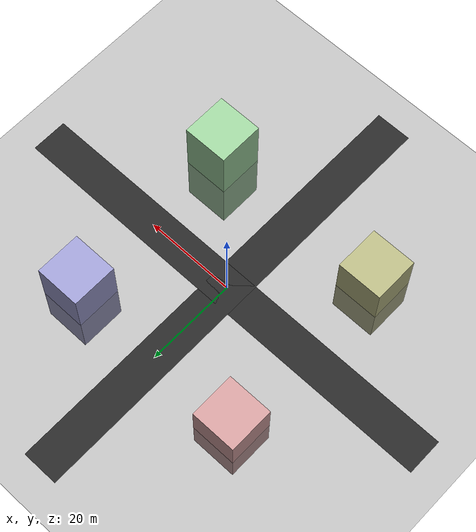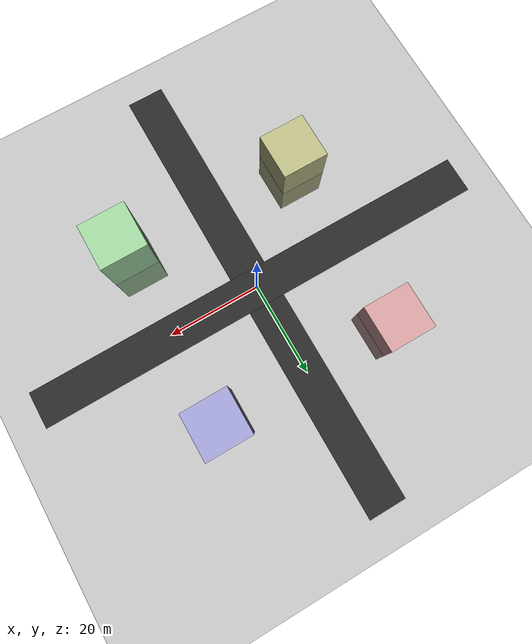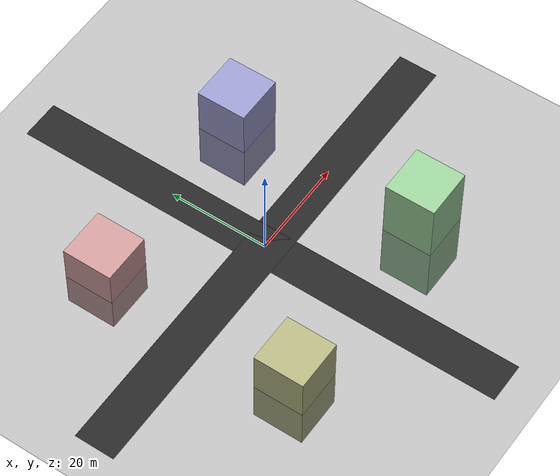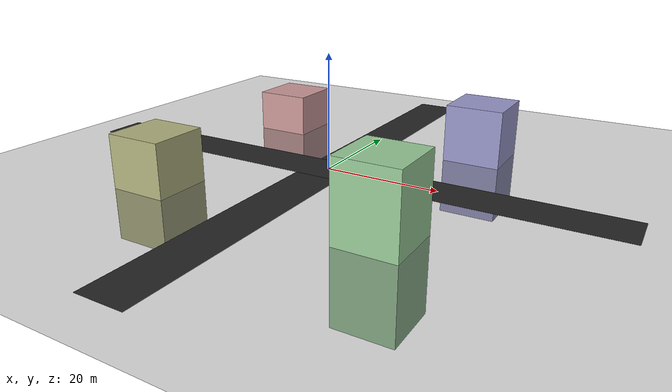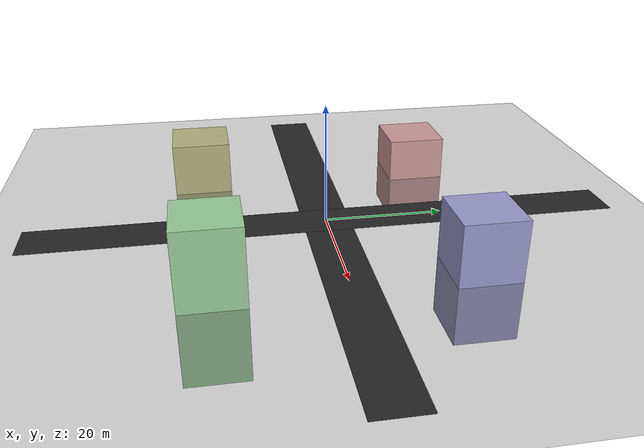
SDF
<?xml version="1.0"?>
<sdf version="1.6">
  <world name="city">

    <!-- Güneş ışığı -->
    <light name="sun" type="directional">
      <cast_shadows>true</cast_shadows>
      <pose>0 0 100 0 0 0</pose>
      <diffuse>1 1 1 1</diffuse>
      <specular>0.1 0.1 0.1 1</specular>
      <direction>-0.5 0.5 -1</direction>
    </light>

    <!-- Zemin -->
    <model name="ground">
      <static>true</static>
      <link name="link">
        <collision name="collision">
          <geometry><plane><normal>0 0 1</normal><size>200 200</size></plane></geometry>
        </collision>
        <visual name="visual">
          <geometry><plane><normal>0 0 1</normal><size>200 200</size></plane></geometry>
          <material><ambient>0.3 0.3 0.3 1</ambient></material>
        </visual>
      </link>
    </model>

    <!-- Yol (yatay) -->
    <model name="road_h">
      <static>true</static>
      <link name="link">
        <visual name="visual">
          <pose>0 0 0.01 0 0 0</pose>
          <geometry><box><size>100 8 0.02</size></box></geometry>
          <material><ambient>0.15 0.15 0.15 1</ambient></material>
        </visual>
      </link>
    </model>

    <!-- Yol (dikey) -->
    <model name="road_v">
      <static>true</static>
      <link name="link">
        <visual name="visual">
          <pose>0 0 0.01 0 0 0</pose>
          <geometry><box><size>8 100 0.02</size></box></geometry>
          <material><ambient>0.15 0.15 0.15 1</ambient></material>
        </visual>
      </link>
    </model>

    <!-- Bina 1 -->
    <model name="building_1">
      <static>true</static>
      <pose>20 20 0 0 0 0</pose>
      <link name="link">
        <collision name="collision">
          <geometry><box><size>10 10 20</size></box></geometry>
        </collision>
        <visual name="visual">
          <geometry><box><size>10 10 20</size></box></geometry>
          <material><ambient>0.6 0.6 0.8 1</ambient></material>
        </visual>
      </link>
    </model>

    <!-- Bina 2 -->
    <model name="building_2">
      <static>true</static>
      <pose>-20 20 0 0 0 0</pose>
      <link name="link">
        <collision name="collision">
          <geometry><box><size>10 10 15</size></box></geometry>
        </collision>
        <visual name="visual">
          <geometry><box><size>10 10 15</size></box></geometry>
          <material><ambient>0.8 0.6 0.6 1</ambient></material>
        </visual>
      </link>
    </model>

    <!-- Bina 3 -->
    <model name="building_3">
      <static>true</static>
      <pose>20 -20 0 0 0 0</pose>
      <link name="link">
        <collision name="collision">
          <geometry><box><size>10 10 25</size></box></geometry>
        </collision>
        <visual name="visual">
          <geometry><box><size>10 10 25</size></box></geometry>
          <material><ambient>0.6 0.8 0.6 1</ambient></material>
        </visual>
      </link>
    </model>

    <!-- Bina 4 -->
    <model name="building_4">
      <static>true</static>
      <pose>-20 -20 0 0 0 0</pose>
      <link name="link">
        <collision name="collision">
          <geometry><box><size>10 10 18</size></box></geometry>
        </collision>
        <visual name="visual">
          <geometry><box><size>10 10 18</size></box></geometry>
          <material><ambient>0.7 0.7 0.5 1</ambient></material>
        </visual>
      </link>
    </model>

    <physics type="ode">
      <real_time_update_rate>1000</real_time_update_rate>
      <max_step_size>0.001</max_step_size>
    </physics>

  </world>
</sdf>
